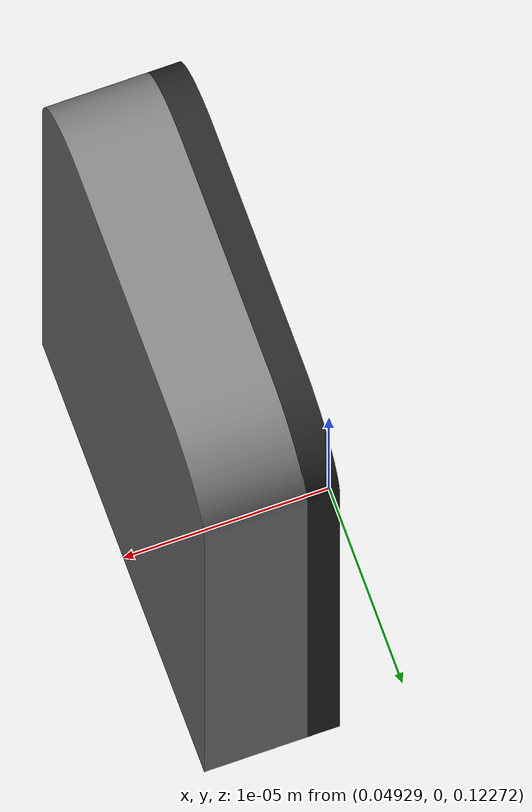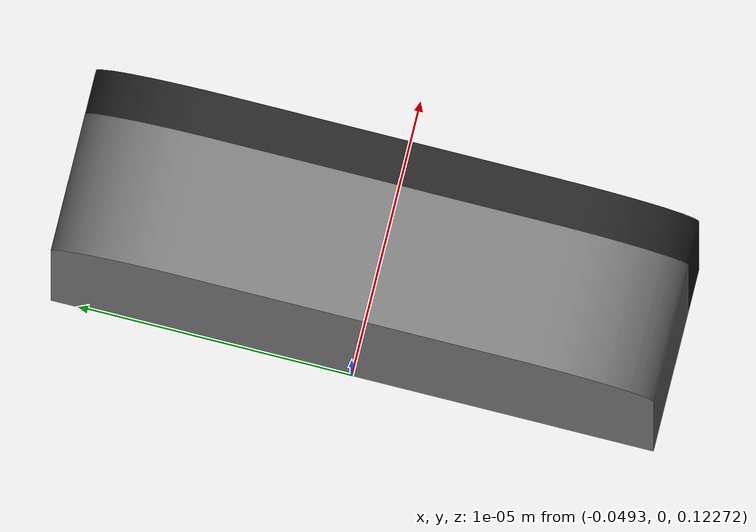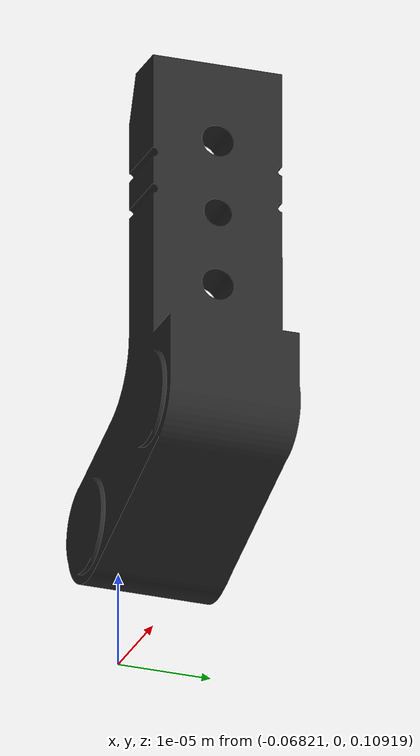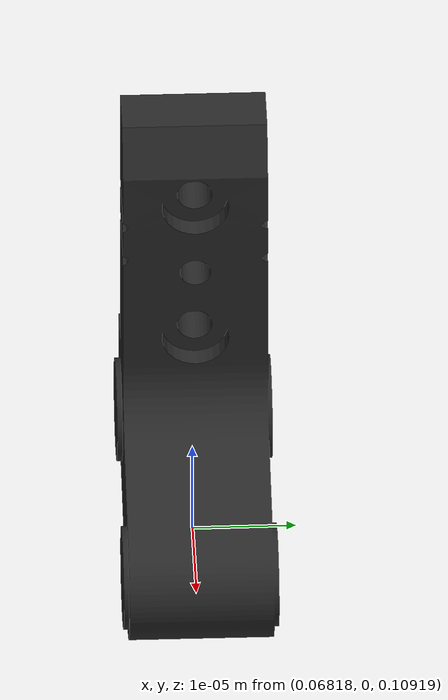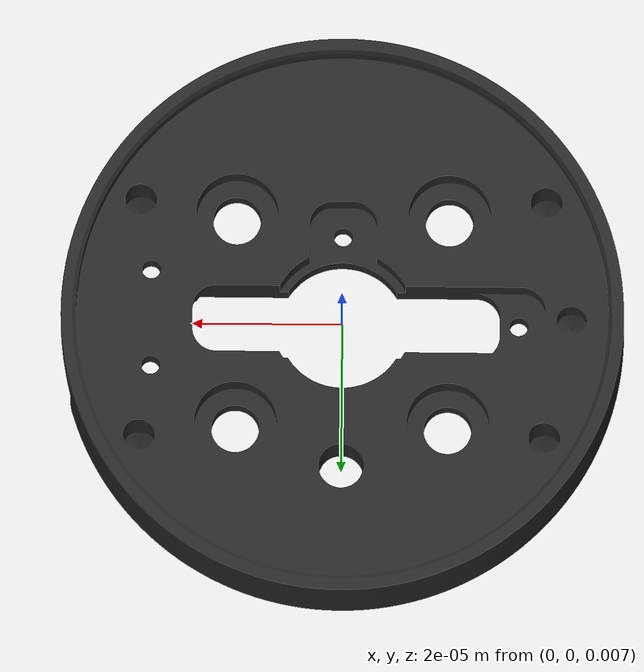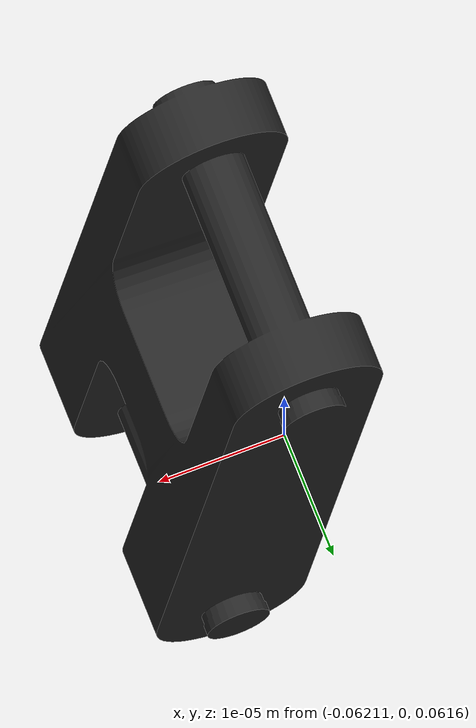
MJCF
<mujoco model="2f85_gripper">
  <!-- meshdir is relative to the TOP-LEVEL scene file's dir (scenes/tasks/),
       not this file's dir, because MuJoCo resolves mesh paths from the main
       model file. -->
  <compiler angle="radian" meshdir="../../assets/mujoco_menagerie" autolimits="true"/>

  <default>
    <default class="2f85">
      <mesh scale="0.001 0.001 0.001"/>
      <general biastype="affine"/>
      <joint axis="1 0 0"/>
      <default class="driver">
        <joint range="0 0.8" armature="0.005" damping="0.1" solimplimit="0.95 0.99 0.001" solreflimit="0.005 1"/>
      </default>
      <default class="follower">
        <joint range="-0.872664 0.872664" armature="0.001" pos="0 -0.018 0.0065" solimplimit="0.95 0.99 0.001"
          solreflimit="0.005 1"/>
      </default>
      <default class="spring_link">
        <joint range="-0.29670597283 0.8" armature="0.001" stiffness="0.05" springref="2.62" damping="0.00125"/>
      </default>
      <default class="coupler">
        <joint range="-1.57 0" armature="0.001" solimplimit="0.95 0.99 0.001" solreflimit="0.005 1"/>
      </default>
      <default class="gripper_visual">
        <geom type="mesh" contype="0" conaffinity="0" group="2"/>
      </default>
      <default class="gripper_collision">
        <geom type="mesh" group="3"/>
        <default class="pad_box1">
          <geom mass="0" type="box" pos="0 -0.0026 0.028125" size="0.011 0.004 0.009375" friction="0.7"
            solimp="0.95 0.99 0.001" solref="0.004 1" priority="1" rgba="0.55 0.55 0.55 1"/>
        </default>
        <default class="pad_box2">
          <geom mass="0" type="box" pos="0 -0.0026 0.009375" size="0.011 0.004 0.009375" friction="0.6"
            solimp="0.95 0.99 0.001" solref="0.004 1" priority="1" rgba="0.45 0.45 0.45 1"/>
        </default>
      </default>
    </default>
  </default>

  <asset>
    <material name="gripper_metal" rgba="0.58 0.58 0.58 1"/>
    <material name="gripper_silicone" rgba="0.1882 0.1882 0.1882 1"/>
    <material name="gripper_gray" rgba="0.4627 0.4627 0.4627 1"/>
    <material name="gripper_black" rgba="0.149 0.149 0.149 1"/>

    <mesh class="2f85" name="gripper_base_mount" file="robotiq_2f85/assets/base_mount.stl"/>
    <mesh class="2f85" name="gripper_base" file="robotiq_2f85/assets/base.stl"/>
    <mesh class="2f85" name="gripper_driver" file="robotiq_2f85/assets/driver.stl"/>
    <mesh class="2f85" name="gripper_coupler" file="robotiq_2f85/assets/coupler.stl"/>
    <mesh class="2f85" name="gripper_follower" file="robotiq_2f85/assets/follower.stl"/>
    <mesh class="2f85" name="gripper_pad" file="robotiq_2f85/assets/pad.stl"/>
    <mesh class="2f85" name="gripper_silicone_pad" file="robotiq_2f85/assets/silicone_pad.stl"/>
    <mesh class="2f85" name="gripper_spring_link" file="robotiq_2f85/assets/spring_link.stl"/>
  </asset>

  <worldbody>
    <body name="base_mount" pos="0 0 0.007" childclass="2f85">
      <geom class="gripper_visual" mesh="gripper_base_mount" material="gripper_black"/>
      <geom class="gripper_collision" mesh="gripper_base_mount"/>
      <body name="gripper_base" pos="0 0 0.0038" quat="1 0 0 -1">
        <inertial mass="0.777441" pos="0 -2.70394e-05 0.0354675" quat="1 -0.00152849 0 0"
          diaginertia="0.000260285 0.000225381 0.000152708"/>
        <geom class="gripper_visual" mesh="gripper_base" material="gripper_black"/>
        <geom class="gripper_collision" mesh="gripper_base"/>
        <site name="pinch" pos="0 0 0.145" type="sphere" group="5" rgba="0.9 0.9 0.9 1" size="0.005"/>
        <body name="right_driver" pos="0 0.0306011 0.054904">
          <inertial mass="0.00899563" pos="2.96931e-12 0.0177547 0.00107314"
            quat="0.681301 0.732003 0 0"
            diaginertia="1.72352e-06 1.60906e-06 3.22006e-07"/>
          <joint name="right_driver_joint" class="driver"/>
          <geom class="gripper_visual" mesh="gripper_driver" material="gripper_gray"/>
          <geom class="gripper_collision" mesh="gripper_driver"/>
          <body name="right_coupler" pos="0 0.0315 -0.0041">
            <inertial mass="0.0140974" pos="0 0.00301209 0.0232175"
              quat="0.705636 -0.0455904 0.0455904 0.705636"
              diaginertia="4.16206e-06 3.52216e-06 8.88131e-07"/>
            <joint name="right_coupler_joint" class="coupler"/>
            <geom class="gripper_visual" mesh="gripper_coupler" material="gripper_black"/>
            <geom class="gripper_collision" mesh="gripper_coupler"/>
          </body>
        </body>
        <body name="right_spring_link" pos="0 0.0132 0.0609">
          <inertial mass="0.0221642" pos="-8.65005e-09 0.0181624 0.0212658"
            quat="0.663403 -0.244737 0.244737 0.663403"
            diaginertia="8.96853e-06 6.71733e-06 2.63931e-06"/>
          <joint name="right_spring_link_joint" class="spring_link"/>
          <geom class="gripper_visual" mesh="gripper_spring_link" material="gripper_black"/>
          <geom class="gripper_collision" mesh="gripper_spring_link"/>
          <body name="right_follower" pos="0 0.055 0.0375">
            <inertial mass="0.0125222" pos="0 -0.011046 0.0124786" quat="1 0.1664 0 0"
              diaginertia="2.67415e-06 2.4559e-06 6.02031e-07"/>
            <joint name="right_follower_joint" class="follower"/>
            <geom class="gripper_visual" mesh="gripper_follower" material="gripper_black"/>
            <geom class="gripper_collision" mesh="gripper_follower"/>
            <body name="right_pad" pos="0 -0.0189 0.01352">
              <geom class="pad_box1" name="right_pad1"/>
              <geom class="pad_box2" name="right_pad2"/>
              <inertial mass="0.0035" pos="0 -0.0025 0.0185" quat="0.707107 0 0 0.707107"
                diaginertia="4.73958e-07 3.64583e-07 1.23958e-07"/>
              <geom class="gripper_visual" mesh="gripper_pad"/>
              <body name="right_silicone_pad">
                <geom class="gripper_visual" mesh="gripper_silicone_pad" material="gripper_black"/>
              </body>
            </body>
          </body>
        </body>
        <body name="left_driver" pos="0 -0.0306011 0.054904" quat="0 0 0 1">
          <inertial mass="0.00899563" pos="0 0.0177547 0.00107314" quat="0.681301 0.732003 0 0"
            diaginertia="1.72352e-06 1.60906e-06 3.22006e-07"/>
          <joint name="left_driver_joint" class="driver"/>
          <geom class="gripper_visual" mesh="gripper_driver" material="gripper_gray"/>
          <geom class="gripper_collision" mesh="gripper_driver"/>
          <body name="left_coupler" pos="0 0.0315 -0.0041">
            <inertial mass="0.0140974" pos="0 0.00301209 0.0232175"
              quat="0.705636 -0.0455904 0.0455904 0.705636"
              diaginertia="4.16206e-06 3.52216e-06 8.88131e-07"/>
            <joint name="left_coupler_joint" class="coupler"/>
            <geom class="gripper_visual" mesh="gripper_coupler" material="gripper_black"/>
            <geom class="gripper_collision" mesh="gripper_coupler"/>
          </body>
        </body>
        <body name="left_spring_link" pos="0 -0.0132 0.0609" quat="0 0 0 1">
          <inertial mass="0.0221642" pos="-8.65005e-09 0.0181624 0.0212658"
            quat="0.663403 -0.244737 0.244737 0.663403"
            diaginertia="8.96853e-06 6.71733e-06 2.63931e-06"/>
          <joint name="left_spring_link_joint" class="spring_link"/>
          <geom class="gripper_visual" mesh="gripper_spring_link" material="gripper_black"/>
          <geom class="gripper_collision" mesh="gripper_spring_link"/>
          <body name="left_follower" pos="0 0.055 0.0375">
            <inertial mass="0.0125222" pos="0 -0.011046 0.0124786" quat="1 0.1664 0 0"
              diaginertia="2.67415e-06 2.4559e-06 6.02031e-07"/>
            <joint name="left_follower_joint" class="follower"/>
            <geom class="gripper_visual" mesh="gripper_follower" material="gripper_black"/>
            <geom class="gripper_collision" mesh="gripper_follower"/>
            <body name="left_pad" pos="0 -0.0189 0.01352">
              <geom class="pad_box1" name="left_pad1"/>
              <geom class="pad_box2" name="left_pad2"/>
              <inertial mass="0.0035" pos="0 -0.0025 0.0185" quat="1 0 0 1"
                diaginertia="4.73958e-07 3.64583e-07 1.23958e-07"/>
              <geom class="gripper_visual" mesh="gripper_pad"/>
              <body name="left_silicone_pad">
                <geom class="gripper_visual" mesh="gripper_silicone_pad" material="gripper_black"/>
              </body>
            </body>
          </body>
        </body>
      </body>
    </body>
  </worldbody>

  <contact>
    <exclude body1="gripper_base" body2="left_driver"/>
    <exclude body1="gripper_base" body2="right_driver"/>
    <exclude body1="gripper_base" body2="left_spring_link"/>
    <exclude body1="gripper_base" body2="right_spring_link"/>
    <exclude body1="right_coupler" body2="right_follower"/>
    <exclude body1="left_coupler" body2="left_follower"/>
  </contact>

  <tendon>
    <fixed name="split">
      <joint joint="right_driver_joint" coef="0.5"/>
      <joint joint="left_driver_joint" coef="0.5"/>
    </fixed>
  </tendon>

  <equality>
    <connect anchor="0 0 0" body1="right_follower" body2="right_coupler" solimp="0.95 0.99 0.001" solref="0.005 1"/>
    <connect anchor="0 0 0" body1="left_follower" body2="left_coupler" solimp="0.95 0.99 0.001" solref="0.005 1"/>
    <joint joint1="right_driver_joint" joint2="left_driver_joint" polycoef="0 1 0 0 0" solimp="0.95 0.99 0.001"
      solref="0.005 1"/>
  </equality>

  <actuator>
    <general class="2f85" name="fingers_actuator" tendon="split" forcerange="-5 5" ctrlrange="0 255"
      gainprm="0.3137255 0 0" biasprm="0 -100 -10"/>
  </actuator>
</mujoco>
